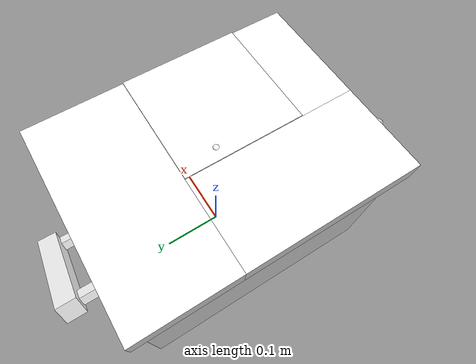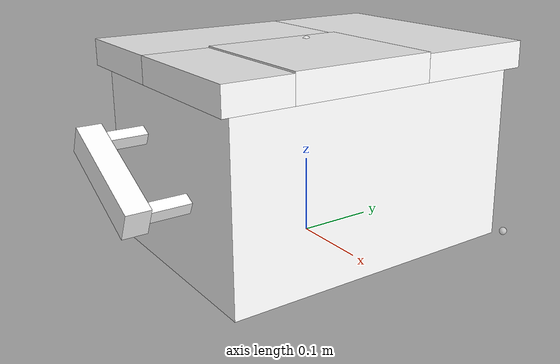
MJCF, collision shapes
<mujoco model="tote_f01">
  <default>
    <default class="visual">
      <geom group="1" type="mesh" contype="0" conaffinity="0" density="100"/>
    </default>
    <default class="collision">
      <geom group="0" type="mesh" density="100" solimp="0.95 0.98 0.001" solref="0.004 1" rgba="1 1 1 0.25"/>
    </default>
  </default>
  <asset>
    <material name="opaque__plastic__gray.001" specular="0.5" shininess="0.36" rgba="0.050389 0.050389 0.050389 1.000000"/>
    <material name="opaque__plastic__white.001" specular="0.5" shininess="0.25" rgba="0.800000 0.800000 0.800000 1.000000"/>
    <mesh file="meshes/tote_f01_0.obj" name="tote_f01_0"/>
    <mesh file="meshes/tote_f01_1.obj" name="tote_f01_1"/>
    <mesh file="meshes/handle.obj" name="handle"/>
    <mesh file="meshes/handle_mirror.obj" name="handle_mirror"/>
  </asset>
  <worldbody>
    <body>
      <body name="object">
        <geom mesh="tote_f01_0" material="opaque__plastic__gray.001" class="visual"/>
        <geom mesh="tote_f01_1" material="opaque__plastic__white.001" class="visual"/>
        <geom name="collider_box_cb92007b" type="box" pos="0.070889545 -0.03478815 0.24138967500000003" size="0.017964765000000008 0.08994487500000001 0.09283863" quat="0.5000000000000001 -0.5000000000000001 0.5000000000000001 0.5000000000000001" class="collision"/>
        <geom name="collider_box_d69e040c" type="box" pos="7.4400000000140285e-06 0.13538329999999998 0.240409235" size="0.016987835000000007 0.07733282 0.16083340000000002" quat="0.7071067811865476 0.0 0.7071067811865472 -4.3297802811774695e-17" class="collision"/>
        <geom name="collider_box_a47505b5" type="box" pos="-0.08994709000000001 -0.077390755 0.24041107499999997" size="0.016986354999999995 0.07089175 0.135441235" quat="0.5000000000000001 0.5000000000000001 0.5000000000000001 -0.5000000000000001" class="collision"/>
        <geom name="collider_box_85e0036b" type="box" pos="-7.285614012862304e-06 5.577544530395313e-05 0.11056478500286834" size="0.11286876933290152 0.1501230020814523 0.19892934896578765" quat="0.5000240928866677 0.4999943632778841 0.500023614941359 -0.4999579259539585" class="collision"/>
        <geom name="collider_box_67b0d103" type="box" pos="0.07088399999999997 -0.170233665 0.24041243499999995" size="0.016987715 0.042606885 0.08993932999999998" quat="0.7071067811865476 0.0 0.7071067811865472 0.0" class="collision"/>
        <body name="handle_1" pos="0 0.27 0.1285" quat="0.9743701 0 0.2249511 0">
          <geom mesh="handle" class="visual" rgba="0.2 0.2 0.2 1.0"/>
          <geom type="box" pos="-0.059047845301811265 -0.045 0" size="0.008 0.008 0.025" quat="0.5046660647935649 0.504706234998332 -0.4952490447782901 0.49528997874556036" class="collision"/>
          <geom type="box" pos="0.06188433419671608 -0.045 0" size="0.008 0.008 0.025" quat="0.5046660647935649 0.504706234998332 -0.4952490447782901 0.49528997874556036" class="collision"/>
          <geom type="box" pos="0.00145 -0.004 0" size="0.073 0.015 0.018" class="collision"/>
        </body>
        <body name="handle_2" pos="0 -0.27 0.1285" quat="0.9743701 0 0.2249511 0">
          <geom mesh="handle_mirror" class="visual" rgba="0.2 0.2 0.2 1.0"/>
          <geom type="box" pos="-0.059047845301811265 0.045 0" size="0.008 0.008 0.025" quat="0.5046660647935649 0.504706234998332 -0.4952490447782901 0.49528997874556036" class="collision"/>
          <geom type="box" pos="0.06188433419671608 0.045 0" size="0.008 0.008 0.025" quat="0.5046660647935649 0.504706234998332 -0.4952490447782901 0.49528997874556036" class="collision"/>
          <geom type="box" pos="0.00145 0.004 0" size="0.073 0.015 0.018" class="collision"/>
        </body>
      </body>
      <site name="bottom_site" pos="0 0 6e-06" rgba="1 1 1 0.5" size="0.005"/>
      <site name="top_site" pos="0 0 0.257046" rgba="1 1 1 0.5" size="0.005"/>
      <site name="horizontal_radius_site" pos="0.158937 0.210934 0" rgba="1 1 1 0.5" size="0.005"/>
    </body>
  </worldbody>
</mujoco>
